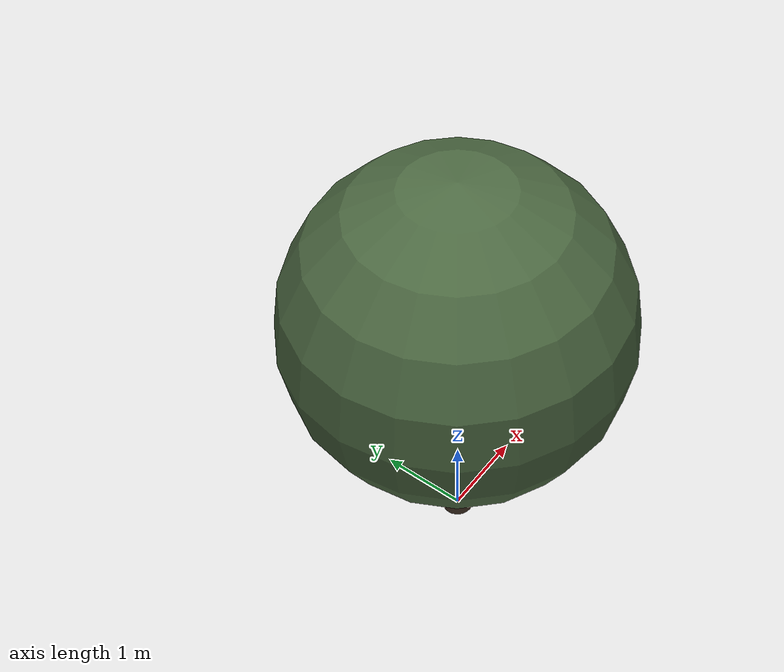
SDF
<?xml version="1.0" ?>
<sdf version="1.10">
  <model name="chene_vert_18">
    <static>true</static>

    <!-- Tronc -->
    <link name="trunk">
      <pose>0 0 1.272554298789212 0 0 0</pose>
      <visual name="trunk_visual">
        <geometry>
          <cylinder>
            <radius>0.1791299847850218</radius>
            <length>2.545108597578424</length>
          </cylinder>
        </geometry>
        <material>
          <ambient>0.29 0.22 0.16 1</ambient>
          <diffuse>0.29 0.22 0.16 1</diffuse>
          <specular>0.1 0.1 0.1 1</specular>
        </material>
      </visual>
      <collision name="trunk_collision">
        <geometry>
          <cylinder>
            <radius>0.1791299847850218</radius>
            <length>2.545108597578424</length>
          </cylinder>
        </geometry>
      </collision>
    </link>

    <!-- Feuillage -->
    <link name="crown">
      <pose>0 0 3.087563795310239 0 0 0</pose>
      <visual name="crown_visual">
        <geometry>
          <sphere>
              <radius>1.8081839924393825</radius>
            </sphere>
        </geometry>
        <material>
          <ambient>0.29 0.40 0.25 1</ambient>
          <diffuse>0.29 0.40 0.25 1</diffuse>
          <specular>0.1 0.1 0.1 1</specular>
        </material>
      </visual>
      <collision name="crown_collision">
        <geometry>
          <sphere>
            <radius>1.4465471939515062</radius>
          </sphere>
        </geometry>
      </collision>
    </link>

    <!-- Joint tronc-feuillage -->
    <joint name="trunk_crown_joint" type="fixed">
      <parent>trunk</parent>
      <child>crown</child>
    </joint>

  </model>
</sdf>
